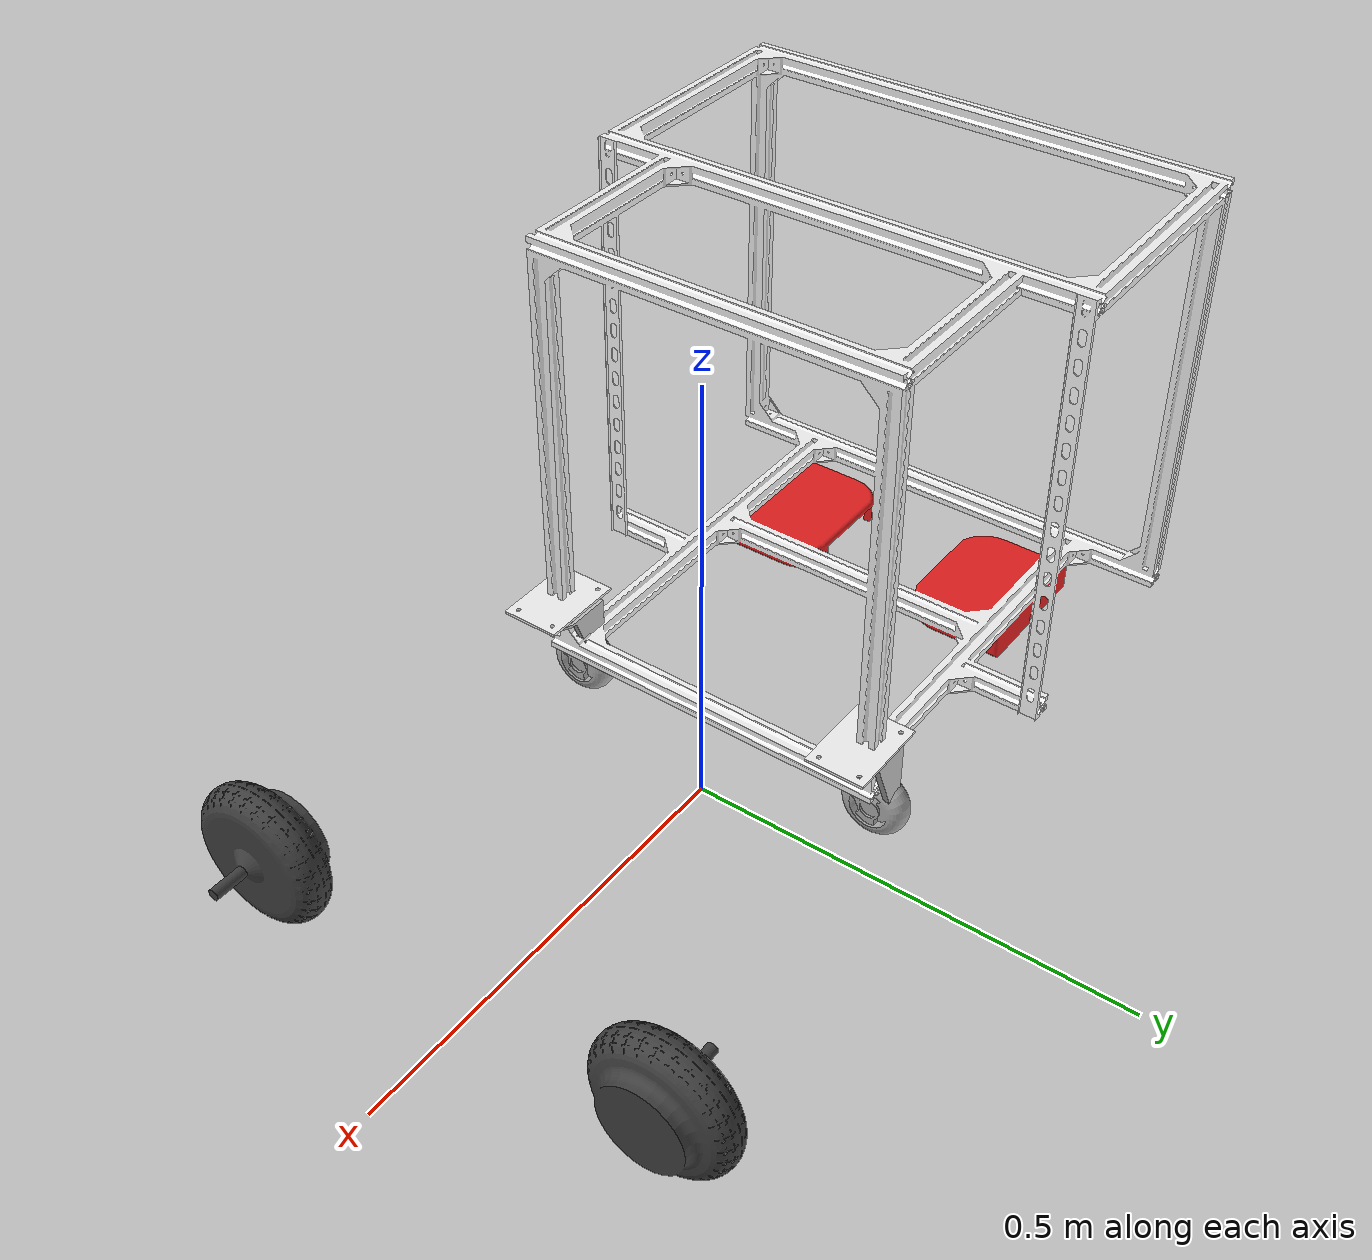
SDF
<?xml version='1.0'?>
<sdf version='1.4'>

    <!-- CASTER WHEEL COLLISION: SPHERE -->
    <!-- ALL CASTER JOINTS ARE FIXED -->

    <model name="diff_drive_robot">
        <static>false</static>

        <!-- HOVER BASE -->
        <link name='hover_base'>
            <pose>0 0 0.095 0 0 0</pose>

            <collision name='collision'>
                <pose>0.3 0 0.085 0 0 0</pose>
                <geometry>
                    <box>
                        <size>0.6 0.6 0.17</size>
                    </box>
                </geometry>
            </collision>

            <visual name='visual'>
                <geometry>
                    <mesh>
                        <uri>model://diff_drive_robot/meshes/hover_base.dae</uri>
                    </mesh>
                </geometry>
            </visual>

            <!-- PMMA MATERIAL PART -->
            <inertial>
                <pose>0.294210 -0.000007 0.075021 0 0 0</pose>
                <inertia>
                    <ixx>124866e-06</ixx>
                    <ixz>2486.9e-06</ixz>
                    <iyy>120347e-06</iyy>
                    <iyz>0.0237e-06</iyz>
                    <izz>216693e-06</izz>
                </inertia>
                <mass>3.714</mass>
            </inertial>
        </link>

        <link name='hover_base_auxiliary'>
            <pose>0 0 0.095 0 0 0</pose>
            <!-- ALUMINIUM MATERIAL PART -->
            <inertial>
                <pose>0.362124 -0.000007 0.005637 0 0 0</pose>
                <inertia>
                    <ixx>118507e-06</ixx>
                    <ixy>0.2419e-06</ixy>
                    <ixz>5624.0e-06</ixz>
                    <iyy>57298.e-06</iyy>
                    <izz>154073e-06</izz>
                </inertia>
                <mass>5.272</mass>
            </inertial>
        </link>

        <!-- HOVER LEFT WHEEL -->
        <link name='hover_left_wheel'>
            <pose>0.38 0.2385 0.08 0 1.5707 1.5707</pose>

            <collision name='collision'>
                <geometry>
                    <cylinder>
                        <radius>0.08</radius>
                        <length>0.045</length>
                    </cylinder>
                </geometry>
                <surface>
                    <friction>
                        <ode>
                            <mu>0.6</mu>
                            <mu2>0.6</mu2>
                        </ode>
                    </friction>
                </surface>
            </collision>

            <visual name='visual'>
                <pose>0 0 0 1.5707 0 0</pose>
                <geometry>
                    <mesh>
                        <uri>model://diff_drive_robot/meshes/hover_wheel.dae</uri>
                    </mesh>
                </geometry>
            </visual>

            <inertial>
                <inertia>
                    <ixx>0.003007</ixx>
                    <iyy>0.003007</iyy>
                    <izz>0.005440</izz>
                </inertia>
                <mass>1.7</mass>
            </inertial>
        </link>

        <!-- HOVER RIGHT WHEEL -->
        <link name='hover_right_wheel'>
            <pose>0.38 -0.2385 0.08 0 1.5707 1.5707</pose>

            <collision name='collision'>
                <geometry>
                    <cylinder>
                        <radius>0.08</radius>
                        <length>0.045</length>
                    </cylinder>
                </geometry>
                <surface>
                    <friction>
                        <ode>
                            <mu>0.6</mu>
                            <mu2>0.6</mu2>
                        </ode>
                    </friction>
                </surface>
            </collision>

            <visual name='visual'>
                <pose>0 0 0 -1.5707 0 0</pose>
                <geometry>
                    <mesh>
                        <uri>model://diff_drive_robot/meshes/hover_wheel.dae</uri>
                    </mesh>
                </geometry>
            </visual>

            <inertial>
                <inertia>
                    <ixx>0.003007</ixx>
                    <iyy>0.003007</iyy>
                    <izz>0.005440</izz>
                </inertia>
                <mass>1.7</mass>
            </inertial>
        </link>

        <!-- CASTER LEFT BASE -->
        <link name='caster_left_base'>
            <pose>0 0.185 0.167 0 0 0</pose>

            <collision name='collision'>
                <pose>0 0 -0.0085 0 0 0</pose>
                <geometry>
                    <box>
                        <size>0.106 0.09 0.017</size>
                    </box>
                </geometry>
            </collision>

            <visual name='visual'>
                <geometry>
                    <mesh>
                        <uri>model://diff_drive_robot/meshes/caster_base.dae</uri>
                    </mesh>
                </geometry>
            </visual>

            <inertial>
                <pose>-0.000272 -0.000090 -0.005057 0 0 0</pose>
                <inertia>
                    <ixx>65.864e-06</ixx>
                    <iyy>89.566e-06</iyy>
                    <izz>153.36e-06</izz>
                </inertia>
                <mass>0.1</mass>
            </inertial>
        </link>

        <!-- CASTER RIGHT BASE -->
        <link name='caster_right_base'>
            <pose>0 -0.185 0.167 0 0 0</pose>

            <collision name='collision'>
                <pose>0 0 -0.0085 0 0 0</pose>
                <geometry>
                    <box>
                        <size>0.106 0.09 0.017</size>
                    </box>
                </geometry>
            </collision>

            <visual name='visual'>
                <geometry>
                    <mesh>
                        <uri>model://diff_drive_robot/meshes/caster_base.dae</uri>
                    </mesh>
                </geometry>
            </visual>

            <inertial>
                <pose>-0.000272 -0.000090 -0.005057 0 0 0</pose>
                <inertia>
                    <ixx>65.864e-06</ixx>
                    <iyy>89.566e-06</iyy>
                    <izz>153.36e-06</izz>
                </inertia>
                <mass>0.1</mass>
            </inertial>
        </link>

        <!-- CASTER LEFT CONNECTOR -->
        <link name='caster_left_connector'>
            <pose>0 0.185 0.15 0 0 3.1415</pose>

            <collision name='collision'>
                <geometry>
                    <mesh>
                        <uri>model://diff_drive_robot/meshes/caster_connector.dae</uri>
                    </mesh>
                </geometry>
            </collision>

            <visual name='visual'>
                <geometry>
                    <mesh>
                        <uri>model://diff_drive_robot/meshes/caster_connector.dae</uri>
                    </mesh>
                </geometry>
            </visual>

            <inertial>
                <pose>0.008557 -0.000014 -0.034485 0 0 0</pose>
                <inertia>
                    <ixx>718.007e-06</ixx>
                    <ixy>0.39114e-06</ixy>
                    <ixz>140.767e-06</ixz>
                    <iyy>585.149e-06</iyy>
                    <iyz>0.52152e-06</iyz>
                    <izz>525.608e-06</izz>
                </inertia>
                <mass>0.4</mass>
            </inertial>
        </link>

        <!-- CASTER RIGHT CONNECTOR -->
        <link name='caster_right_connector'>
            <pose>0 -0.185 0.15 0 0 3.1415</pose>

            <collision name='collision'>
                <geometry>
                    <mesh>
                        <uri>model://diff_drive_robot/meshes/caster_connector.dae</uri>
                    </mesh>
                </geometry>
            </collision>

            <visual name='visual'>
                <geometry>
                    <mesh>
                        <uri>model://diff_drive_robot/meshes/caster_connector.dae</uri>
                    </mesh>
                </geometry>
            </visual>

            <inertial>
                <pose>0.008557 -0.000014 -0.034485 0 0 0</pose>
                <inertia>
                    <ixx>718.007e-06</ixx>
                    <ixy>0.39114e-06</ixy>
                    <ixz>140.767e-06</ixz>
                    <iyy>585.149e-06</iyy>
                    <iyz>0.52152e-06</iyz>
                    <izz>525.608e-06</izz>
                </inertia>
                <mass>0.4</mass>
            </inertial>
        </link>

        <!-- CASTER LEFT WHEEL -->
        <link name='caster_left_wheel'>
            <pose>-0.04 0.185 0.06 0 1.5707 1.5707</pose>

            <collision name='collision'>
                <geometry>
                    <sphere>
                        <radius>0.06</radius>
                    </sphere>
                </geometry>
                <surface>
                    <friction>
                        <ode>
                            <mu>0</mu>
                            <mu2>0</mu2>
                            <slip1>1</slip1>
                            <slip2>1</slip2>
                        </ode>
                    </friction>
                </surface>
            </collision>

            <visual name='visual'>
                <pose>0 0 0 0 1.5707 0</pose>
                <geometry>
                    <mesh>
                        <uri>model://diff_drive_robot/meshes/caster_wheel.dae</uri>
                    </mesh>
                </geometry>
            </visual>

            <inertial>
                <inertia>
                    <ixx>0.000554</ixx>
                    <iyy>0.000554</iyy>
                    <izz>0.000900</izz>
                </inertia>
                <mass>0.5</mass>
            </inertial>
        </link>

        <!-- CASTER RIGHT WHEEL -->
        <link name='caster_right_wheel'>
            <pose>-0.04 -0.185 0.06 0 1.5707 1.5707</pose>

            <collision name='collision'>
                <geometry>
                    <sphere>
                        <radius>0.06</radius>
                    </sphere>
                </geometry>
                <surface>
                    <friction>
                        <ode>
                            <mu>0</mu>
                            <mu2>0</mu2>
                            <slip1>1</slip1>
                            <slip2>1</slip2>
                        </ode>
                    </friction>
                </surface>
            </collision>

            <visual name='visual'>
                <pose>0 0 0 0 1.5707 0</pose>
                <geometry>
                    <mesh>
                        <uri>model://diff_drive_robot/meshes/caster_wheel.dae</uri>
                    </mesh>
                </geometry>
            </visual>

            <inertial>
                <inertia>
                    <ixx>0.000554</ixx>
                    <iyy>0.000554</iyy>
                    <izz>0.000900</izz>
                </inertia>
                <mass>0.5</mass>
            </inertial>
        </link>

        <!-- HOVER LEFT WHEEL JOINT -->
        <joint type='revolute' name='hover_left_wheel_joint'>
            <child>hover_left_wheel</child>
            <parent>hover_base</parent>
            <axis>
                <xyz>0 1 0</xyz>
            </axis>
        </joint>

        <!-- HOVER RIGHT WHEEL JOINT -->
        <joint type='revolute' name='hover_right_wheel_joint'>
            <child>hover_right_wheel</child>
            <parent>hover_base</parent>
            <axis>
                <xyz>0 1 0</xyz>
            </axis>
        </joint>

        <!-- CASTER LEFT BASE JOINT -->
        <joint type='fixed' name='caster_left_base_joint'>
            <child>caster_left_base</child>
            <parent>hover_base</parent>
        </joint>

        <!-- CASTER RIGHT BASE JOINT -->
        <joint type='fixed' name='caster_right_base_joint'>
            <child>caster_right_base</child>
            <parent>hover_base</parent>
        </joint>

        <!-- CASTER LEFT CONNECTOR JOINT -->
        <joint type='fixed' name='caster_left_connector_joint'>
            <child>caster_left_connector</child>
            <parent>caster_left_base</parent>
            <axis>
                <xyz>0 0 1</xyz>
            </axis>
        </joint>

        <!-- CASTER RIGHT CONNECTOR JOINT -->
        <joint type='fixed' name='caster_right_connector_joint'>
            <child>caster_right_connector</child>
            <parent>caster_right_base</parent>
            <axis>
                <xyz>0 0 1</xyz>
            </axis>
        </joint>

        <!-- CASTER LEFT WHEEL JOINT -->
        <joint type='fixed' name='caster_left_wheel_joint'>
            <child>caster_left_wheel</child>
            <parent>caster_left_connector</parent>
            <axis>
                <xyz>0 1 0</xyz>
            </axis>
        </joint>

        <!-- CASTER RIGHT WHEEL JOINT -->
        <joint type='fixed' name='caster_right_wheel_joint'>
            <child>caster_right_wheel</child>
            <parent>caster_right_connector</parent>
            <axis>
                <xyz>0 1 0</xyz>
            </axis>
        </joint>
    </model>
</sdf>
